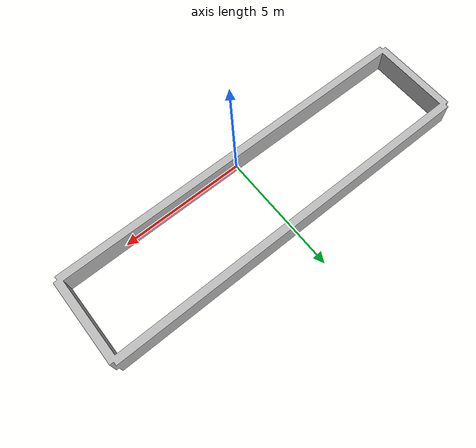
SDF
<?xml version="1.0" ?>
<sdf version="1.5">
  <model name="approximate_library_space">
    <static>true</static>
    <link name="link">
      <collision name="collision">
        <pose>0 0 0 0 0 0</pose>
        <geometry>
          <mesh>
            <uri>model://approximate_library_space/meshes/approximate_library_space.dae</uri>
          </mesh>
        </geometry>
        <surface>
          <friction>
            <ode>
              <mu>1.0</mu>
              <mu2>1.0</mu2>
            </ode>
          </friction>
          <contact>
            <ode>
              <kp>10000000.0</kp>
              <kd>1.0</kd>
              <min_depth>0.001</min_depth>
              <max_vel>0.1</max_vel>
            </ode>
          </contact>
        </surface>
      </collision>
      <visual name="visual">
        <pose>0 0 0 0 0 0</pose>
        <geometry>
          <mesh>
            <uri>model://approximate_library_space/meshes/approximate_library_space.dae</uri>
          </mesh>
        </geometry>
      </visual>
    </link>
  </model>
</sdf>
